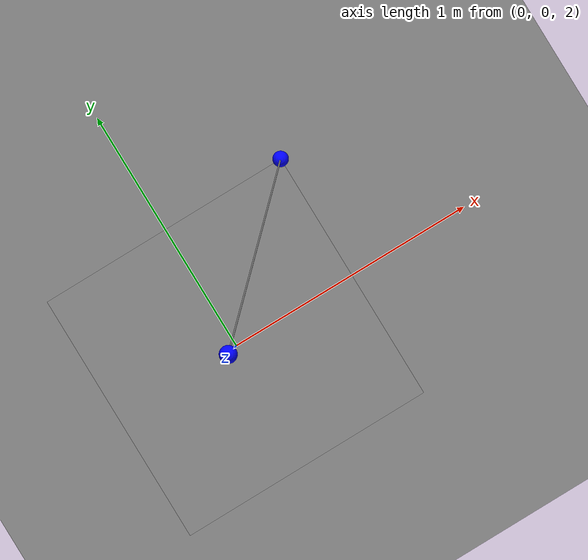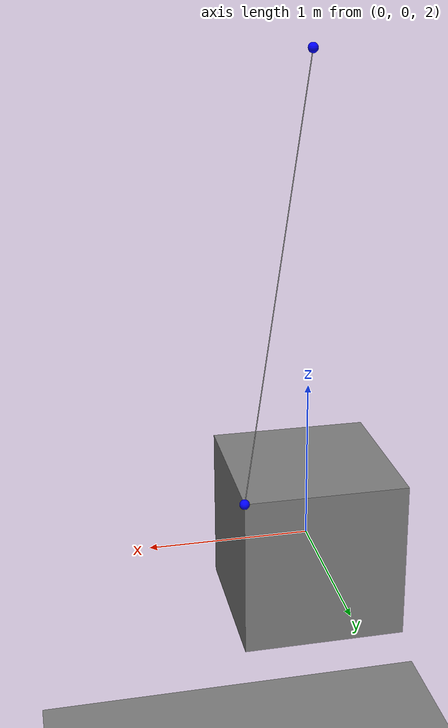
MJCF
<mujoco>
  <option density="1000"/>
  <worldbody>
    <geom type="plane" size="10 10 .1"/>
    <light pos="0 0 10"/>
    <site name="anchor" pos="0 0 5" size="0.03" rgba="0 0 1 1"/>
    <body name="box" pos="0 0 2">
      <freejoint/>
      <geom type="box" size=".5 .5 .5"/>
      <site name="box" pos=".5 .5 .5" rgba="0 0 1 1" size="0.03"/>
    </body>
  </worldbody>
  <tendon>
    <spatial name="tendon" limited="true" range="0 2" damping="10000">
      <site site="anchor"/>
      <site site="box"/>
    </spatial>
  </tendon>
  <actuator>
    <position
      name="tendon" tendon="tendon"
      ctrllimited="true" ctrlrange="1 2"
      kp="100000"/>
  </actuator>
</mujoco>
